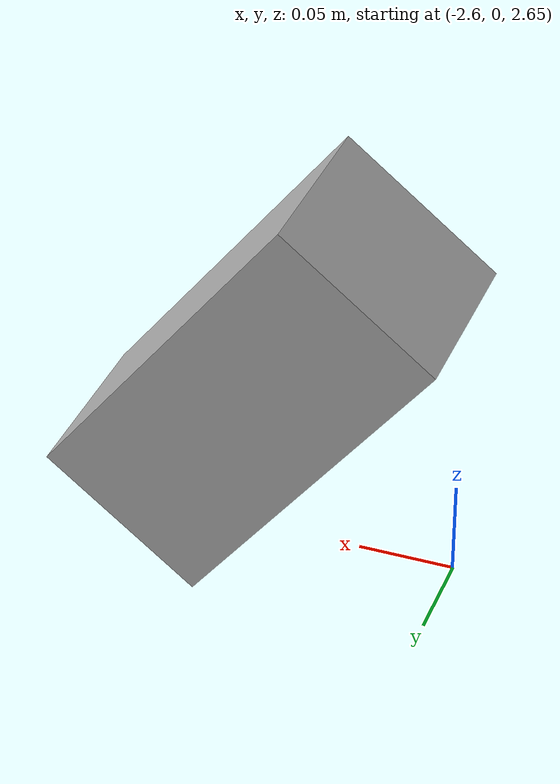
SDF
<sdf version='1.10'>
  <world name='default'>
    <physics name='1ms' type='ignored'>
      <real_time_factor>0.01</real_time_factor>
    </physics>
    <plugin
      filename="gz-sim-physics-system"
      name="gz::sim::systems::Physics">
    </plugin>
    <plugin
      filename="gz-sim-user-commands-system"
      name="gz::sim::systems::UserCommands">
    </plugin>
    <plugin
      filename="gz-sim-scene-broadcaster-system"
      name="gz::sim::systems::SceneBroadcaster">
    </plugin>
    <plugin
      filename="ignition-gazebo-sensors-system"
      name="gz::sim::systems::Sensors">
    </plugin>
    <gravity>0 0 -9.8000000000000007</gravity>
    <magnetic_field>5.5644999999999998e-06 2.2875799999999999e-05 -4.2388400000000002e-05</magnetic_field>
    <atmosphere type='adiabatic' />
    <scene>
      <ambient>0.400000006 0.400000006 0.400000006 1</ambient>
      <background>0.699999988 0.699999988 0.699999988 1</background>
      <shadows>true</shadows>
      <grid>false</grid>
      <sky>
        <clouds>true</clouds>
      </sky>
    </scene>
    <model name='ground_plane'>
      <static>true</static>
      <link name='link'>
        <collision name='collision'>
          <geometry>
            <plane>
              <normal>0 0 1</normal>
              <size>100 100</size>
            </plane>
          </geometry>
          <surface>
            <friction>
              <ode />
            </friction>
            <bounce />
            <contact />
          </surface>
        </collision>
        <visual name='visual'>
          <geometry>
            <plane>

              <normal>0 0 1</normal>
              <size>3 3</size>
            </plane>
          </geometry>
          <material>
            <ambient>0.800000012 0.800000012 0.800000012 1</ambient>
            <diffuse>0.800000012 0.800000012 0.800000012 1</diffuse>
            <specular>0.800000012 0.800000012 0.800000012 1</specular>
          </material>
        </visual>
        <pose>0 0 0 0 0 0</pose>
        <inertial>
          <pose>0 0 0 0 0 0</pose>
          <mass>1</mass>
          <inertia>
            <ixx>1</ixx>
            <ixy>0</ixy>
            <ixz>0</ixz>
            <iyy>1</iyy>
            <iyz>0</iyz>
            <izz>1</izz>
          </inertia>
        </inertial>
        <enable_wind>false</enable_wind>
      </link>
      <pose>0 0 0 0 0 0</pose>
      <self_collide>false</self_collide>
    </model>
    <light name='sun' type='directional'>
      <pose>0 0 10 0 0 0</pose>
      <cast_shadows>true</cast_shadows>
      <intensity>1</intensity>
      <direction>-0.5 0.10000000000000001 -0.90000000000000002</direction>
      <diffuse>0.800000012 0.800000012 0.800000012 1</diffuse>
      <specular>0.200000003 0.200000003 0.200000003 1</specular>
      <attenuation>
        <range>1000</range>
        <linear>0.01</linear>
        <constant>0.90000000000000002</constant>
        <quadratic>0.001</quadratic>
      </attenuation>
      <spot>
        <inner_angle>0</inner_angle>
        <outer_angle>0</outer_angle>
        <falloff>0</falloff>
      </spot>
    </light>

    <model name='box'>

      <static>true</static>
      <pose>-2.5 0 2.75 0 0.9 0</pose>
      <link name='box_link'>
        <inertial>
          <inertia>
            <ixx>0.16666</ixx>
            <ixy>0</ixy>
            <ixz>0</ixz>
            <iyy>0.16666</iyy>
            <iyz>0</iyz>
            <izz>0.16666</izz>
          </inertia>
          <mass>1</mass>
          <pose>0 0 0 0 0 0</pose>
        </inertial>
        <collision name='box_collision'>
          <geometry>
            <box>
              <size>0.2 0.1 0.1</size>
            </box>
          </geometry>
          <surface>
            <friction>
              <ode />
            </friction>
            <bounce />
            <contact />
          </surface>
        </collision>
        <visual name='box_visual'>
          <geometry>
            <box>
              <size>0.2 0.1 0.1</size>
            </box>
          </geometry>
          <material>
            <ambient>0.300000012 0.300000012 0.300000012 1</ambient>
            <diffuse>0.699999988 0.699999988 0.699999988 1</diffuse>
            <specular>1 1 1 1</specular>
          </material>
        </visual>
        <pose>0 0 0 0 0 0</pose>
        <enable_wind>false</enable_wind>
        <sensor name='camera' type='camera'>
          <visualize>true</visualize>
          <update_rate>120</update_rate>
          <camera>
            <camera_info_topic>/camera/rgb/camera_info</camera_info_topic>
            <horizontal_fov>1.089</horizontal_fov>
            <image>
              <format>R8G8B8</format>
              <width>640</width>
              <height>480</height>
            </image>
            <clip>
              <near>0.050000000000000003</near>
              <far>1000</far>
            </clip>
          </camera>
          <topic>/camera/rgb/image_raw</topic>
          <gz_frame_id>camera_optical</gz_frame_id>
        </sensor>
      </link>
      <static>false</static>
      <self_collide>false</self_collide>
    </model>

  </world>
</sdf>
